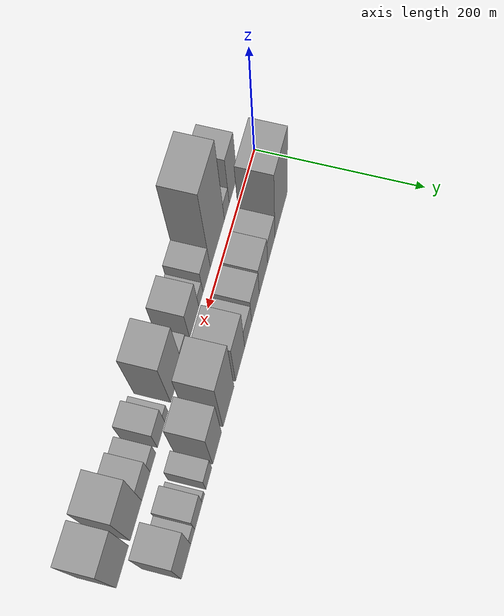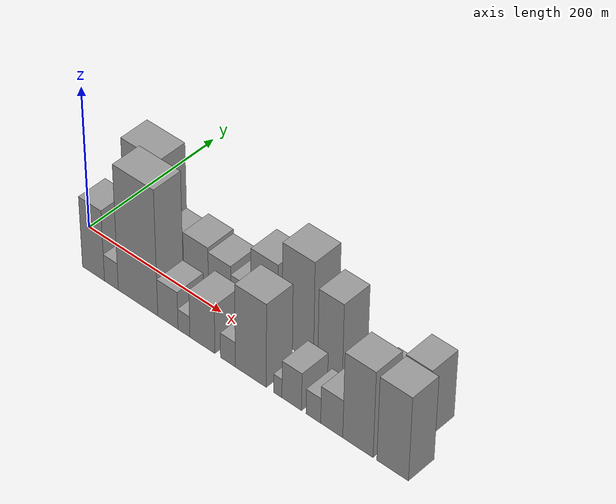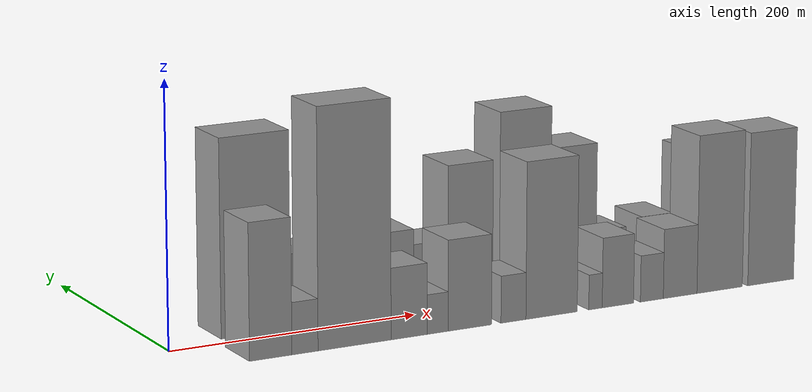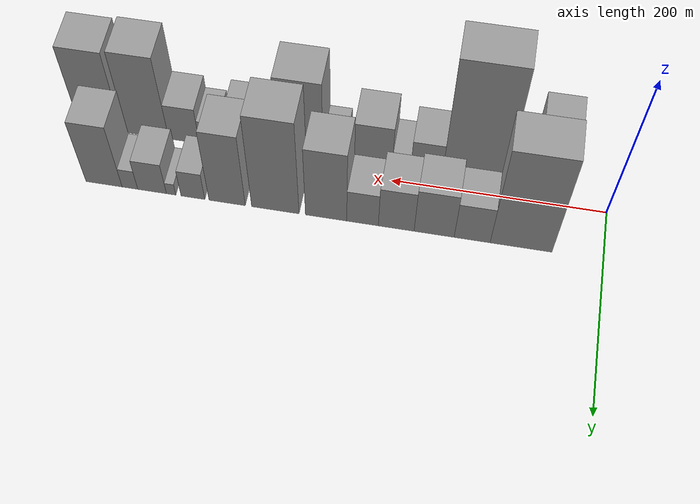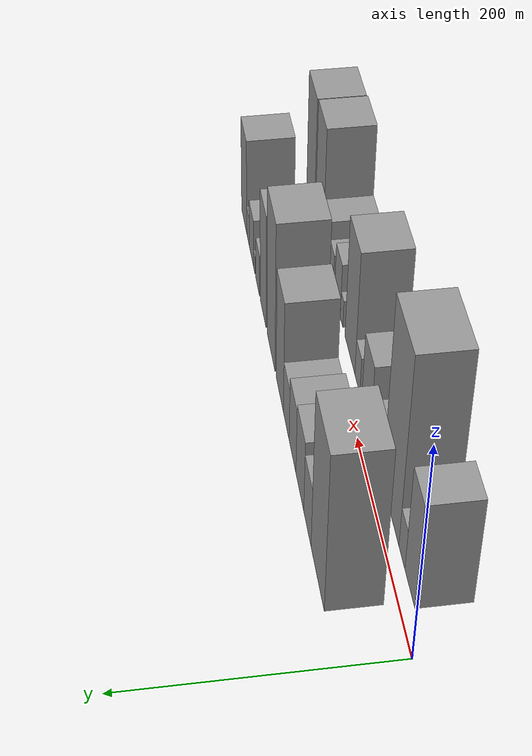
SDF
<sdf version="1.6">
 <world name="default">
  <scene>
   <sky><clouds><speed>12</speed></clouds></sky>
   <ambient>0.4 0.4 0.4 1</ambient>
   <background>0.7 0.7 0.7 1</background>
   <shadows>1</shadows>
  </scene>
  <gravity>0 0 -9.8066</gravity>
  <magnetic_field>6e-06 2.3e-05 -4.2e-05</magnetic_field>
  <physics default="0" name="default_physics" type="ode">
   <ode>
    <solver>
     <type>quick</type>
     <iters>10</iters>
     <sor>1.0</sor>
     <use_dynamic_moi_rescaling>0</use_dynamic_moi_rescaling>
    </solver>
    <constraints>
     <cfm>0</cfm>
     <erp>0.2</erp>
     <contact_max_correcting_vel>100</contact_max_correcting_vel>
     <contact_surface_layer>0.001</contact_surface_layer>
    </constraints>
   </ode>
   <max_step_size>0.004</max_step_size>
   <real_time_factor>1</real_time_factor>
   <real_time_update_rate>250</real_time_update_rate>
  </physics>
  <light name="sun" type="directional">
   <pose>0 0 10 0 0 0</pose>
   <diffuse>0.8 0.8 0.8 1</diffuse>
   <specular>0.2 0.2 0.2 1</specular>
   <attenuation>
    <range>1000</range>
    <constant>0.9</constant>
    <linear>0.01</linear>
    <quadratic>0.001</quadratic>
   </attenuation>
   <direction>-0.5 0.1 -0.9</direction>
  </light>
  <model name="building_1">
   <static>1</static>
   <pose>73.9904 30.0000 0 0.000000 0.000000 1.570796</pose>
   <link name="link">
    <pose>0 0 75.00 0 0 0</pose>
    <collision name="collision"><geometry><box><size>40.0000 55.9807 150.0000</size></box></geometry></collision>
    <visual name="visual">
     <cast_shadows>0</cast_shadows>
     <geometry><box><size>40.0000 55.9807 150.0000</size></box></geometry>
     <material>
      <script>
       <uri>model://grey_wall/materials/scripts</uri>
       <uri>model://grey_wall/materials/textures</uri>
       <name>vrc/grey_wall</name>
      </script>
     </material>
    </visual>
   </link>
  </model>
  <model name="building_2">
   <static>1</static>
   <pose>118.3921 30.0000 0 0.000000 0.000000 1.570796</pose>
   <link name="link">
    <pose>0 0 28.50 0 0 0</pose>
    <collision name="collision"><geometry><box><size>40.0000 32.8228 57.0000</size></box></geometry></collision>
    <visual name="visual">
     <cast_shadows>0</cast_shadows>
     <geometry><box><size>40.0000 32.8228 57.0000</size></box></geometry>
     <material>
      <script>
       <uri>model://grey_wall/materials/scripts</uri>
       <uri>model://grey_wall/materials/textures</uri>
       <name>vrc/grey_wall</name>
      </script>
     </material>
    </visual>
   </link>
  </model>
  <model name="building_3">
   <static>1</static>
   <pose>153.1498 30.0000 0 0.000000 0.000000 1.570796</pose>
   <link name="link">
    <pose>0 0 34.50 0 0 0</pose>
    <collision name="collision"><geometry><box><size>40.0000 36.6926 69.0000</size></box></geometry></collision>
    <visual name="visual">
     <cast_shadows>0</cast_shadows>
     <geometry><box><size>40.0000 36.6926 69.0000</size></box></geometry>
     <material>
      <script>
       <uri>model://grey_wall/materials/scripts</uri>
       <uri>model://grey_wall/materials/textures</uri>
       <name>vrc/grey_wall</name>
      </script>
     </material>
    </visual>
   </link>
  </model>
  <model name="building_4">
   <static>1</static>
   <pose>187.9749 30.0000 0 0.000000 0.000000 1.570796</pose>
   <link name="link">
    <pose>0 0 31.50 0 0 0</pose>
    <collision name="collision"><geometry><box><size>40.0000 32.9576 63.0000</size></box></geometry></collision>
    <visual name="visual">
     <cast_shadows>0</cast_shadows>
     <geometry><box><size>40.0000 32.9576 63.0000</size></box></geometry>
     <material>
      <script>
       <uri>model://grey_wall/materials/scripts</uri>
       <uri>model://grey_wall/materials/textures</uri>
       <name>vrc/grey_wall</name>
      </script>
     </material>
    </visual>
   </link>
  </model>
  <model name="building_5">
   <static>1</static>
   <pose>219.0863 30.0000 0 0.000000 0.000000 1.570796</pose>
   <link name="link">
    <pose>0 0 25.50 0 0 0</pose>
    <collision name="collision"><geometry><box><size>40.0000 29.2653 51.0000</size></box></geometry></collision>
    <visual name="visual">
     <cast_shadows>0</cast_shadows>
     <geometry><box><size>40.0000 29.2653 51.0000</size></box></geometry>
     <material>
      <script>
       <uri>model://grey_wall/materials/scripts</uri>
       <uri>model://grey_wall/materials/textures</uri>
       <name>vrc/grey_wall</name>
      </script>
     </material>
    </visual>
   </link>
  </model>
  <model name="building_6">
   <static>1</static>
   <pose>252.9111 30.0000 0 0.000000 0.000000 1.570796</pose>
   <link name="link">
    <pose>0 0 54.00 0 0 0</pose>
    <collision name="collision"><geometry><box><size>40.0000 38.3842 108.0000</size></box></geometry></collision>
    <visual name="visual">
     <cast_shadows>0</cast_shadows>
     <geometry><box><size>40.0000 38.3842 108.0000</size></box></geometry>
     <material>
      <script>
       <uri>model://grey_wall/materials/scripts</uri>
       <uri>model://grey_wall/materials/textures</uri>
       <name>vrc/grey_wall</name>
      </script>
     </material>
    </visual>
   </link>
  </model>
  <model name="building_7">
   <static>1</static>
   <pose>300.3535 30.0000 0 0.000000 0.000000 1.570796</pose>
   <link name="link">
    <pose>0 0 72.00 0 0 0</pose>
    <collision name="collision"><geometry><box><size>40.0000 44.5006 144.0000</size></box></geometry></collision>
    <visual name="visual">
     <cast_shadows>0</cast_shadows>
     <geometry><box><size>40.0000 44.5006 144.0000</size></box></geometry>
     <material>
      <script>
       <uri>model://grey_wall/materials/scripts</uri>
       <uri>model://grey_wall/materials/textures</uri>
       <name>vrc/grey_wall</name>
      </script>
     </material>
    </visual>
   </link>
  </model>
  <model name="building_8">
   <static>1</static>
   <pose>345.7480 30.0000 0 0.000000 0.000000 1.570796</pose>
   <link name="link">
    <pose>0 0 55.50 0 0 0</pose>
    <collision name="collision"><geometry><box><size>40.0000 34.2885 111.0000</size></box></geometry></collision>
    <visual name="visual">
     <cast_shadows>0</cast_shadows>
     <geometry><box><size>40.0000 34.2885 111.0000</size></box></geometry>
     <material>
      <script>
       <uri>model://grey_wall/materials/scripts</uri>
       <uri>model://grey_wall/materials/textures</uri>
       <name>vrc/grey_wall</name>
      </script>
     </material>
    </visual>
   </link>
  </model>
  <model name="building_9">
   <static>1</static>
   <pose>378.1911 30.0000 0 0.000000 0.000000 1.570796</pose>
   <link name="link">
    <pose>0 0 21.00 0 0 0</pose>
    <collision name="collision"><geometry><box><size>40.0000 22.5977 42.0000</size></box></geometry></collision>
    <visual name="visual">
     <cast_shadows>0</cast_shadows>
     <geometry><box><size>40.0000 22.5977 42.0000</size></box></geometry>
     <material>
      <script>
       <uri>model://grey_wall/materials/scripts</uri>
       <uri>model://grey_wall/materials/textures</uri>
       <name>vrc/grey_wall</name>
      </script>
     </material>
    </visual>
   </link>
  </model>
  <model name="building_10">
   <static>1</static>
   <pose>398.9591 30.0000 0 0.000000 0.000000 1.570796</pose>
   <link name="link">
    <pose>0 0 9.00 0 0 0</pose>
    <collision name="collision"><geometry><box><size>40.0000 8.9383 18.0000</size></box></geometry></collision>
    <visual name="visual">
     <cast_shadows>0</cast_shadows>
     <geometry><box><size>40.0000 8.9383 18.0000</size></box></geometry>
     <material>
      <script>
       <uri>model://grey_wall/materials/scripts</uri>
       <uri>model://grey_wall/materials/textures</uri>
       <name>vrc/grey_wall</name>
      </script>
     </material>
    </visual>
   </link>
  </model>
  <model name="building_11">
   <static>1</static>
   <pose>417.1754 30.0000 0 0.000000 0.000000 1.570796</pose>
   <link name="link">
    <pose>0 0 24.00 0 0 0</pose>
    <collision name="collision"><geometry><box><size>40.0000 27.4942 48.0000</size></box></geometry></collision>
    <visual name="visual">
     <cast_shadows>0</cast_shadows>
     <geometry><box><size>40.0000 27.4942 48.0000</size></box></geometry>
     <material>
      <script>
       <uri>model://grey_wall/materials/scripts</uri>
       <uri>model://grey_wall/materials/textures</uri>
       <name>vrc/grey_wall</name>
      </script>
     </material>
    </visual>
   </link>
  </model>
  <model name="building_12">
   <static>1</static>
   <pose>438.4390 30.0000 0 0.000000 0.000000 1.570796</pose>
   <link name="link">
    <pose>0 0 15.00 0 0 0</pose>
    <collision name="collision"><geometry><box><size>40.0000 15.0329 30.0000</size></box></geometry></collision>
    <visual name="visual">
     <cast_shadows>0</cast_shadows>
     <geometry><box><size>40.0000 15.0329 30.0000</size></box></geometry>
     <material>
      <script>
       <uri>model://grey_wall/materials/scripts</uri>
       <uri>model://grey_wall/materials/textures</uri>
       <name>vrc/grey_wall</name>
      </script>
     </material>
    </visual>
   </link>
  </model>
  <model name="building_13">
   <static>1</static>
   <pose>463.3235 30.0000 0 0.000000 0.000000 1.570796</pose>
   <link name="link">
    <pose>0 0 48.00 0 0 0</pose>
    <collision name="collision"><geometry><box><size>40.0000 34.7362 96.0000</size></box></geometry></collision>
    <visual name="visual">
     <cast_shadows>0</cast_shadows>
     <geometry><box><size>40.0000 34.7362 96.0000</size></box></geometry>
     <material>
      <script>
       <uri>model://grey_wall/materials/scripts</uri>
       <uri>model://grey_wall/materials/textures</uri>
       <name>vrc/grey_wall</name>
      </script>
     </material>
    </visual>
   </link>
  </model>
  <model name="building_14">
   <static>1</static>
   <pose>56.8223 -30.0000 0 0.000000 0.000000 1.570796</pose>
   <link name="link">
    <pose>0 0 51.00 0 0 0</pose>
    <collision name="collision"><geometry><box><size>40.0000 33.6445 102.0000</size></box></geometry></collision>
    <visual name="visual">
     <cast_shadows>0</cast_shadows>
     <geometry><box><size>40.0000 33.6445 102.0000</size></box></geometry>
     <material>
      <script>
       <uri>model://grey_wall/materials/scripts</uri>
       <uri>model://grey_wall/materials/textures</uri>
       <name>vrc/grey_wall</name>
      </script>
     </material>
    </visual>
   </link>
  </model>
  <model name="building_15">
   <static>1</static>
   <pose>84.0943 -30.0000 0 0.000000 0.000000 1.570796</pose>
   <link name="link">
    <pose>0 0 19.50 0 0 0</pose>
    <collision name="collision"><geometry><box><size>40.0000 20.8995 39.0000</size></box></geometry></collision>
    <visual name="visual">
     <cast_shadows>0</cast_shadows>
     <geometry><box><size>40.0000 20.8995 39.0000</size></box></geometry>
     <material>
      <script>
       <uri>model://grey_wall/materials/scripts</uri>
       <uri>model://grey_wall/materials/textures</uri>
       <name>vrc/grey_wall</name>
      </script>
     </material>
    </visual>
   </link>
  </model>
  <model name="building_16">
   <static>1</static>
   <pose>124.1681 -30.0000 0 0.000000 0.000000 1.570796</pose>
   <link name="link">
    <pose>0 0 90.00 0 0 0</pose>
    <collision name="collision"><geometry><box><size>40.0000 59.2482 180.0000</size></box></geometry></collision>
    <visual name="visual">
     <cast_shadows>0</cast_shadows>
     <geometry><box><size>40.0000 59.2482 180.0000</size></box></geometry>
     <material>
      <script>
       <uri>model://grey_wall/materials/scripts</uri>
       <uri>model://grey_wall/materials/textures</uri>
       <name>vrc/grey_wall</name>
      </script>
     </material>
    </visual>
   </link>
  </model>
  <model name="building_17">
   <static>1</static>
   <pose>168.7151 -30.0000 0 0.000000 0.000000 1.570796</pose>
   <link name="link">
    <pose>0 0 27.00 0 0 0</pose>
    <collision name="collision"><geometry><box><size>40.0000 29.8458 54.0000</size></box></geometry></collision>
    <visual name="visual">
     <cast_shadows>0</cast_shadows>
     <geometry><box><size>40.0000 29.8458 54.0000</size></box></geometry>
     <material>
      <script>
       <uri>model://grey_wall/materials/scripts</uri>
       <uri>model://grey_wall/materials/textures</uri>
       <name>vrc/grey_wall</name>
      </script>
     </material>
    </visual>
   </link>
  </model>
  <model name="building_18">
   <static>1</static>
   <pose>192.3285 -30.0000 0 0.000000 0.000000 1.570796</pose>
   <link name="link">
    <pose>0 0 15.00 0 0 0</pose>
    <collision name="collision"><geometry><box><size>40.0000 17.3808 30.0000</size></box></geometry></collision>
    <visual name="visual">
     <cast_shadows>0</cast_shadows>
     <geometry><box><size>40.0000 17.3808 30.0000</size></box></geometry>
     <material>
      <script>
       <uri>model://grey_wall/materials/scripts</uri>
       <uri>model://grey_wall/materials/textures</uri>
       <name>vrc/grey_wall</name>
      </script>
     </material>
    </visual>
   </link>
  </model>
  <model name="building_19">
   <static>1</static>
   <pose>219.1979 -30.0000 0 0.000000 0.000000 1.570796</pose>
   <link name="link">
    <pose>0 0 34.50 0 0 0</pose>
    <collision name="collision"><geometry><box><size>40.0000 36.3580 69.0000</size></box></geometry></collision>
    <visual name="visual">
     <cast_shadows>0</cast_shadows>
     <geometry><box><size>40.0000 36.3580 69.0000</size></box></geometry>
     <material>
      <script>
       <uri>model://grey_wall/materials/scripts</uri>
       <uri>model://grey_wall/materials/textures</uri>
       <name>vrc/grey_wall</name>
      </script>
     </material>
    </visual>
   </link>
  </model>
  <model name="building_20">
   <static>1</static>
   <pose>256.0103 -30.0000 0 0.000000 0.000000 1.570796</pose>
   <link name="link">
    <pose>0 0 18.00 0 0 0</pose>
    <collision name="collision"><geometry><box><size>40.0000 21.2668 36.0000</size></box></geometry></collision>
    <visual name="visual">
     <cast_shadows>0</cast_shadows>
     <geometry><box><size>40.0000 21.2668 36.0000</size></box></geometry>
     <material>
      <script>
       <uri>model://grey_wall/materials/scripts</uri>
       <uri>model://grey_wall/materials/textures</uri>
       <name>vrc/grey_wall</name>
      </script>
     </material>
    </visual>
   </link>
  </model>
  <model name="building_21">
   <static>1</static>
   <pose>288.6905 -30.0000 0 0.000000 0.000000 1.570796</pose>
   <link name="link">
    <pose>0 0 60.00 0 0 0</pose>
    <collision name="collision"><geometry><box><size>40.0000 44.0935 120.0000</size></box></geometry></collision>
    <visual name="visual">
     <cast_shadows>0</cast_shadows>
     <geometry><box><size>40.0000 44.0935 120.0000</size></box></geometry>
     <material>
      <script>
       <uri>model://grey_wall/materials/scripts</uri>
       <uri>model://grey_wall/materials/textures</uri>
       <name>vrc/grey_wall</name>
      </script>
     </material>
    </visual>
   </link>
  </model>
  <model name="building_22">
   <static>1</static>
   <pose>326.5990 -30.0000 0 0.000000 0.000000 1.570796</pose>
   <link name="link">
    <pose>0 0 13.50 0 0 0</pose>
    <collision name="collision"><geometry><box><size>40.0000 11.7236 27.0000</size></box></geometry></collision>
    <visual name="visual">
     <cast_shadows>0</cast_shadows>
     <geometry><box><size>40.0000 11.7236 27.0000</size></box></geometry>
     <material>
      <script>
       <uri>model://grey_wall/materials/scripts</uri>
       <uri>model://grey_wall/materials/textures</uri>
       <name>vrc/grey_wall</name>
      </script>
     </material>
    </visual>
   </link>
  </model>
  <model name="building_23">
   <static>1</static>
   <pose>346.2064 -30.0000 0 0.000000 0.000000 1.570796</pose>
   <link name="link">
    <pose>0 0 27.00 0 0 0</pose>
    <collision name="collision"><geometry><box><size>40.0000 27.4912 54.0000</size></box></geometry></collision>
    <visual name="visual">
     <cast_shadows>0</cast_shadows>
     <geometry><box><size>40.0000 27.4912 54.0000</size></box></geometry>
     <material>
      <script>
       <uri>model://grey_wall/materials/scripts</uri>
       <uri>model://grey_wall/materials/textures</uri>
       <name>vrc/grey_wall</name>
      </script>
     </material>
    </visual>
   </link>
  </model>
  <model name="building_24">
   <static>1</static>
   <pose>376.1154 -30.0000 0 0.000000 0.000000 1.570796</pose>
   <link name="link">
    <pose>0 0 18.00 0 0 0</pose>
    <collision name="collision"><geometry><box><size>40.0000 20.3268 36.0000</size></box></geometry></collision>
    <visual name="visual">
     <cast_shadows>0</cast_shadows>
     <geometry><box><size>40.0000 20.3268 36.0000</size></box></geometry>
     <material>
      <script>
       <uri>model://grey_wall/materials/scripts</uri>
       <uri>model://grey_wall/materials/textures</uri>
       <name>vrc/grey_wall</name>
      </script>
     </material>
    </visual>
   </link>
  </model>
  <model name="building_25">
   <static>1</static>
   <pose>401.2955 -30.0000 0 0.000000 0.000000 1.570796</pose>
   <link name="link">
    <pose>0 0 27.00 0 0 0</pose>
    <collision name="collision"><geometry><box><size>40.0000 30.0335 54.0000</size></box></geometry></collision>
    <visual name="visual">
     <cast_shadows>0</cast_shadows>
     <geometry><box><size>40.0000 30.0335 54.0000</size></box></geometry>
     <material>
      <script>
       <uri>model://grey_wall/materials/scripts</uri>
       <uri>model://grey_wall/materials/textures</uri>
       <name>vrc/grey_wall</name>
      </script>
     </material>
    </visual>
   </link>
  </model>
  <model name="building_26">
   <static>1</static>
   <pose>436.8027 -30.0000 0 0.000000 0.000000 1.570796</pose>
   <link name="link">
    <pose>0 0 61.50 0 0 0</pose>
    <collision name="collision"><geometry><box><size>40.0000 40.9810 123.0000</size></box></geometry></collision>
    <visual name="visual">
     <cast_shadows>0</cast_shadows>
     <geometry><box><size>40.0000 40.9810 123.0000</size></box></geometry>
     <material>
      <script>
       <uri>model://grey_wall/materials/scripts</uri>
       <uri>model://grey_wall/materials/textures</uri>
       <name>vrc/grey_wall</name>
      </script>
     </material>
    </visual>
   </link>
  </model>
  <model name="building_27">
   <static>1</static>
   <pose>483.3205 -30.0000 0 0.000000 0.000000 1.570796</pose>
   <link name="link">
    <pose>0 0 60.00 0 0 0</pose>
    <collision name="collision"><geometry><box><size>40.0000 42.0545 120.0000</size></box></geometry></collision>
    <visual name="visual">
     <cast_shadows>0</cast_shadows>
     <geometry><box><size>40.0000 42.0545 120.0000</size></box></geometry>
     <material>
      <script>
       <uri>model://grey_wall/materials/scripts</uri>
       <uri>model://grey_wall/materials/textures</uri>
       <name>vrc/grey_wall</name>
      </script>
     </material>
    </visual>
   </link>
  </model>
 </world>
</sdf>
